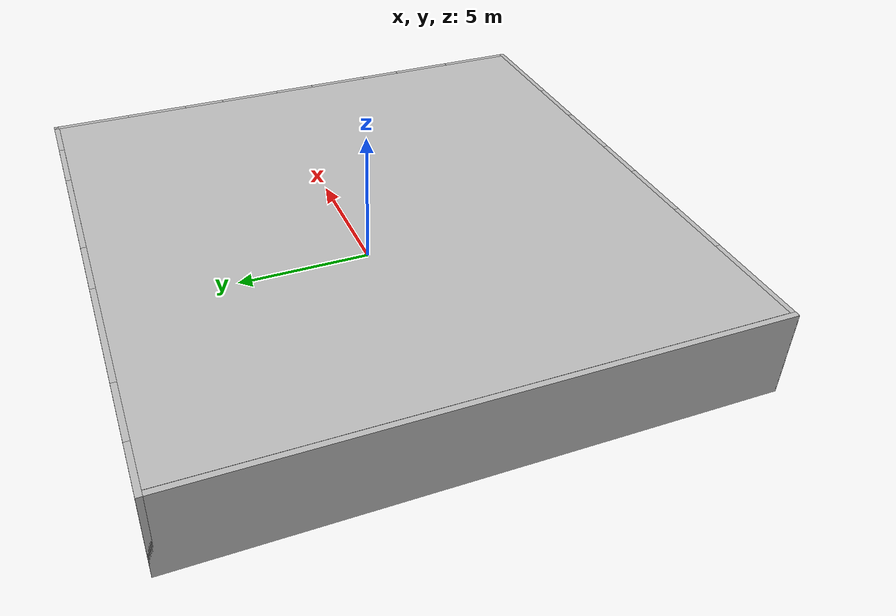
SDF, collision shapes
<sdf version="1.10">
 <model name="office_scene">
  <static>true</static>
  <link name="structure">
   <visual name="structure_visual">
    <geometry><mesh><uri>model://office_scene/meshes/structure.glb</uri></mesh></geometry>
   </visual>
   <collision name="structure_c0">
    <pose>9.33621 4.22544 0.57667 0.00000 -0.00000 -1.57080</pose>
    <geometry><box><size>0.5800 0.0450 0.5800</size></box></geometry>
   </collision>
   <collision name="structure_c1">
    <pose>9.33621 3.60544 0.57667 0.00000 -0.00000 -1.57080</pose>
    <geometry><box><size>0.5800 0.0450 0.5800</size></box></geometry>
   </collision>
   <collision name="structure_c2">
    <pose>9.33621 4.22544 1.19667 0.00000 -0.00000 -1.57080</pose>
    <geometry><box><size>0.5800 0.0450 0.5800</size></box></geometry>
   </collision>
   <collision name="structure_c3">
    <pose>9.33621 3.60544 1.19667 0.00000 -0.00000 -1.57080</pose>
    <geometry><box><size>0.5800 0.0450 0.5800</size></box></geometry>
   </collision>
   <collision name="structure_c4">
    <pose>-10.56379 -2.94456 0.60667 0.00000 -0.00000 1.57080</pose>
    <geometry><box><size>0.5800 0.0450 0.5800</size></box></geometry>
   </collision>
   <collision name="structure_c5">
    <pose>-10.56379 -2.32456 0.60667 0.00000 -0.00000 1.57080</pose>
    <geometry><box><size>0.5800 0.0450 0.5800</size></box></geometry>
   </collision>
   <collision name="structure_c6">
    <pose>-10.56379 -1.70456 0.60667 0.00000 -0.00000 1.57080</pose>
    <geometry><box><size>0.5800 0.0450 0.5800</size></box></geometry>
   </collision>
   <collision name="structure_c7">
    <pose>-10.56379 -1.08456 0.60667 0.00000 -0.00000 1.57080</pose>
    <geometry><box><size>0.5800 0.0450 0.5800</size></box></geometry>
   </collision>
   <collision name="structure_c8">
    <pose>-10.56379 -0.46456 0.60667 0.00000 -0.00000 1.57080</pose>
    <geometry><box><size>0.5800 0.0450 0.5800</size></box></geometry>
   </collision>
   <collision name="structure_c9">
    <pose>-10.56379 0.15544 0.60667 0.00000 -0.00000 1.57080</pose>
    <geometry><box><size>0.5800 0.0450 0.5800</size></box></geometry>
   </collision>
   <collision name="structure_c10">
    <pose>-10.56379 0.77544 0.60667 0.00000 -0.00000 1.57080</pose>
    <geometry><box><size>0.5800 0.0450 0.5800</size></box></geometry>
   </collision>
   <collision name="structure_c11">
    <pose>-10.56379 -2.94456 1.22667 0.00000 -0.00000 1.57080</pose>
    <geometry><box><size>0.5800 0.0450 0.5800</size></box></geometry>
   </collision>
   <collision name="structure_c12">
    <pose>-10.56379 -2.32456 1.22667 0.00000 -0.00000 1.57080</pose>
    <geometry><box><size>0.5800 0.0450 0.5800</size></box></geometry>
   </collision>
   <collision name="structure_c13">
    <pose>-10.56379 -1.70456 1.22667 0.00000 -0.00000 1.57080</pose>
    <geometry><box><size>0.5800 0.0450 0.5800</size></box></geometry>
   </collision>
   <collision name="structure_c14">
    <pose>-10.56379 -1.08456 1.22667 0.00000 -0.00000 1.57080</pose>
    <geometry><box><size>0.5800 0.0450 0.5800</size></box></geometry>
   </collision>
   <collision name="structure_c15">
    <pose>-10.56379 -0.46456 1.22667 0.00000 -0.00000 1.57080</pose>
    <geometry><box><size>0.5800 0.0450 0.5800</size></box></geometry>
   </collision>
   <collision name="structure_c16">
    <pose>-10.56379 0.15544 1.22667 0.00000 -0.00000 1.57080</pose>
    <geometry><box><size>0.5800 0.0450 0.5800</size></box></geometry>
   </collision>
   <collision name="structure_c17">
    <pose>-10.56379 0.77544 1.22667 0.00000 -0.00000 1.57080</pose>
    <geometry><box><size>0.5800 0.0450 0.5800</size></box></geometry>
   </collision>
   <collision name="structure_c18">
    <pose>-0.60379 -0.08456 2.45667 -3.14159 -0.00000 0.00000</pose>
    <geometry><box><size>20.0000 20.0000 0.0200</size></box></geometry>
   </collision>
   <collision name="structure_c19">
    <pose>2.59621 2.91544 0.31667 0.00000 -0.00000 0.00000</pose>
    <geometry><box><size>0.0700 0.2400 2.1200</size></box></geometry>
   </collision>
   <collision name="structure_c20">
    <pose>3.59621 2.91544 0.31667 0.00000 -0.00000 0.00000</pose>
    <geometry><box><size>0.0700 0.2400 2.1200</size></box></geometry>
   </collision>
   <collision name="structure_c21">
    <pose>3.09621 2.91544 1.37667 0.00000 -0.00000 0.00000</pose>
    <geometry><box><size>1.1400 0.2400 0.0700</size></box></geometry>
   </collision>
   <collision name="structure_c22">
    <pose>2.78072 2.43991 0.28667 0.00000 -0.00000 -1.25664</pose>
    <geometry><box><size>1.0000 0.0400 2.0500</size></box></geometry>
   </collision>
   <collision name="structure_c23">
    <pose>-6.50379 4.51544 0.31667 0.00000 -0.00000 0.00000</pose>
    <geometry><box><size>0.0700 0.2400 2.1200</size></box></geometry>
   </collision>
   <collision name="structure_c24">
    <pose>-5.50379 4.51544 0.31667 0.00000 -0.00000 0.00000</pose>
    <geometry><box><size>0.0700 0.2400 2.1200</size></box></geometry>
   </collision>
   <collision name="structure_c25">
    <pose>-6.00379 4.51544 1.37667 0.00000 -0.00000 0.00000</pose>
    <geometry><box><size>1.1400 0.2400 0.0700</size></box></geometry>
   </collision>
   <collision name="structure_c26">
    <pose>-6.26248 4.06228 0.28667 0.00000 -0.00000 -1.13446</pose>
    <geometry><box><size>1.0000 0.0400 2.0500</size></box></geometry>
   </collision>
   <collision name="structure_c27">
    <pose>-1.10379 -10.18456 0.30667 0.00000 -0.00000 0.00000</pose>
    <geometry><box><size>0.9400 0.0500 2.1000</size></box></geometry>
   </collision>
   <collision name="structure_c28">
    <pose>-0.10379 -10.18456 0.30667 0.00000 -0.00000 0.00000</pose>
    <geometry><box><size>0.9400 0.0500 2.1000</size></box></geometry>
   </collision>
   <collision name="structure_c29">
    <pose>-0.60379 -10.18456 1.41667 0.00000 -0.00000 0.00000</pose>
    <geometry><box><size>2.0000 0.2000 0.0800</size></box></geometry>
   </collision>
   <collision name="structure_c30">
    <pose>-1.46379 -10.24456 0.30667 0.00000 -0.00000 0.00000</pose>
    <geometry><box><size>0.0360 0.0360 0.9000</size></box></geometry>
   </collision>
   <collision name="structure_c31">
    <pose>0.25621 -10.24456 0.30667 0.00000 -0.00000 0.00000</pose>
    <geometry><box><size>0.0360 0.0360 0.9000</size></box></geometry>
   </collision>
   <collision name="structure_c32">
    <pose>-1.56379 -10.18456 0.30667 0.00000 -0.00000 0.00000</pose>
    <geometry><box><size>0.0500 0.0600 2.1000</size></box></geometry>
   </collision>
   <collision name="structure_c33">
    <pose>0.35621 -10.18456 0.30667 0.00000 -0.00000 0.00000</pose>
    <geometry><box><size>0.0500 0.0600 2.1000</size></box></geometry>
   </collision>
   <collision name="structure_c34">
    <pose>-0.60379 -0.08456 -0.74333 0.00000 -0.00000 0.00000</pose>
    <geometry><box><size>20.0000 20.0000 0.0200</size></box></geometry>
   </collision>
   <collision name="structure_c35">
    <pose>2.39621 4.31544 1.05667 0.00000 -0.00000 0.00000</pose>
    <geometry><box><size>0.0500 0.0500 1.6000</size></box></geometry>
   </collision>
   <collision name="structure_c36">
    <pose>2.39621 5.71544 1.05667 0.00000 -0.00000 0.00000</pose>
    <geometry><box><size>0.0500 0.0500 1.6000</size></box></geometry>
   </collision>
   <collision name="structure_c37">
    <pose>2.39621 7.11544 1.05667 0.00000 -0.00000 0.00000</pose>
    <geometry><box><size>0.0500 0.0500 1.6000</size></box></geometry>
   </collision>
   <collision name="structure_c38">
    <pose>2.39621 8.51544 1.05667 0.00000 -0.00000 0.00000</pose>
    <geometry><box><size>0.0500 0.0500 1.6000</size></box></geometry>
   </collision>
   <collision name="structure_c39">
    <pose>2.39621 6.41544 0.27667 0.00000 -0.00000 0.00000</pose>
    <geometry><box><size>0.0700 7.0000 0.0500</size></box></geometry>
   </collision>
   <collision name="structure_c40">
    <pose>2.39621 6.41544 1.83667 0.00000 -0.00000 0.00000</pose>
    <geometry><box><size>0.0700 7.0000 0.0500</size></box></geometry>
   </collision>
   <collision name="structure_c41">
    <pose>3.09621 2.91544 1.90667 0.00000 -0.00000 0.00000</pose>
    <geometry><box><size>1.0000 0.2000 1.1000</size></box></geometry>
   </collision>
   <collision name="structure_c42">
    <pose>2.49621 2.91544 0.85667 0.00000 -0.00000 0.00000</pose>
    <geometry><box><size>0.2000 0.2000 3.2000</size></box></geometry>
   </collision>
   <collision name="structure_c43">
    <pose>6.49621 2.91544 0.85667 0.00000 -0.00000 0.00000</pose>
    <geometry><box><size>5.8000 0.2000 3.2000</size></box></geometry>
   </collision>
   <collision name="structure_c44">
    <pose>2.39621 6.41544 -0.24333 0.00000 -0.00000 0.00000</pose>
    <geometry><box><size>0.2000 7.0000 1.0000</size></box></geometry>
   </collision>
   <collision name="structure_c45">
    <pose>2.39621 6.41544 1.05667 0.00000 -0.00000 0.00000</pose>
    <geometry><box><size>0.0200 7.0000 1.6000</size></box></geometry>
   </collision>
   <collision name="structure_c46">
    <pose>2.39621 6.41544 2.15667 0.00000 -0.00000 0.00000</pose>
    <geometry><box><size>0.2000 7.0000 0.6000</size></box></geometry>
   </collision>
   <collision name="structure_c47">
    <pose>-5.00379 7.21544 0.85667 0.00000 -0.00000 0.00000</pose>
    <geometry><box><size>0.2000 5.4000 3.2000</size></box></geometry>
   </collision>
   <collision name="structure_c48">
    <pose>-6.00379 4.51544 1.90667 0.00000 -0.00000 0.00000</pose>
    <geometry><box><size>1.0000 0.2000 1.1000</size></box></geometry>
   </collision>
   <collision name="structure_c49">
    <pose>-8.55379 4.51544 0.85667 0.00000 -0.00000 0.00000</pose>
    <geometry><box><size>4.1000 0.2000 3.2000</size></box></geometry>
   </collision>
   <collision name="structure_c50">
    <pose>-5.25379 4.51544 0.85667 0.00000 -0.00000 0.00000</pose>
    <geometry><box><size>0.5000 0.2000 3.2000</size></box></geometry>
   </collision>
   <collision name="structure_c51">
    <pose>9.38621 -0.08456 -0.69833 0.00000 -0.00000 0.00000</pose>
    <geometry><box><size>0.0200 20.0000 0.0900</size></box></geometry>
   </collision>
   <collision name="structure_c52">
    <pose>-0.60379 9.90544 -0.69833 0.00000 -0.00000 0.00000</pose>
    <geometry><box><size>20.0000 0.0200 0.0900</size></box></geometry>
   </collision>
   <collision name="structure_c53">
    <pose>-0.60379 -10.07456 -0.69833 0.00000 -0.00000 0.00000</pose>
    <geometry><box><size>20.0000 0.0200 0.0900</size></box></geometry>
   </collision>
   <collision name="structure_c54">
    <pose>-10.59379 -0.08456 -0.69833 0.00000 -0.00000 0.00000</pose>
    <geometry><box><size>0.0200 20.0000 0.0900</size></box></geometry>
   </collision>
   <collision name="structure_c55">
    <pose>9.49621 -6.08456 -0.29333 0.00000 -0.00000 0.00000</pose>
    <geometry><box><size>0.2000 2.4000 0.9000</size></box></geometry>
   </collision>
   <collision name="structure_c56">
    <pose>9.49621 -6.08456 2.05667 0.00000 -0.00000 0.00000</pose>
    <geometry><box><size>0.2000 2.4000 0.8000</size></box></geometry>
   </collision>
   <collision name="structure_c57">
    <pose>9.49621 -2.08456 -0.29333 0.00000 -0.00000 0.00000</pose>
    <geometry><box><size>0.2000 2.4000 0.9000</size></box></geometry>
   </collision>
   <collision name="structure_c58">
    <pose>9.49621 -2.08456 2.05667 0.00000 -0.00000 0.00000</pose>
    <geometry><box><size>0.2000 2.4000 0.8000</size></box></geometry>
   </collision>
   <collision name="structure_c59">
    <pose>9.49621 1.91544 -0.29333 0.00000 -0.00000 0.00000</pose>
    <geometry><box><size>0.2000 2.4000 0.9000</size></box></geometry>
   </collision>
   <collision name="structure_c60">
    <pose>9.49621 1.91544 2.05667 0.00000 -0.00000 0.00000</pose>
    <geometry><box><size>0.2000 2.4000 0.8000</size></box></geometry>
   </collision>
   <collision name="structure_c61">
    <pose>9.49621 5.91544 -0.29333 0.00000 -0.00000 0.00000</pose>
    <geometry><box><size>0.2000 2.4000 0.9000</size></box></geometry>
   </collision>
   <collision name="structure_c62">
    <pose>9.49621 5.91544 2.05667 0.00000 -0.00000 0.00000</pose>
    <geometry><box><size>0.2000 2.4000 0.8000</size></box></geometry>
   </collision>
   <collision name="structure_c63">
    <pose>9.49621 -8.78456 0.85667 0.00000 -0.00000 0.00000</pose>
    <geometry><box><size>0.2000 3.0000 3.2000</size></box></geometry>
   </collision>
   <collision name="structure_c64">
    <pose>9.49621 -4.08456 0.85667 0.00000 -0.00000 0.00000</pose>
    <geometry><box><size>0.2000 1.6000 3.2000</size></box></geometry>
   </collision>
   <collision name="structure_c65">
    <pose>9.49621 -0.08456 0.85667 0.00000 -0.00000 0.00000</pose>
    <geometry><box><size>0.2000 1.6000 3.2000</size></box></geometry>
   </collision>
   <collision name="structure_c66">
    <pose>9.49621 3.91544 0.85667 0.00000 -0.00000 0.00000</pose>
    <geometry><box><size>0.2000 1.6000 3.2000</size></box></geometry>
   </collision>
   <collision name="structure_c67">
    <pose>9.49621 8.61544 0.85667 0.00000 -0.00000 0.00000</pose>
    <geometry><box><size>0.2000 3.0000 3.2000</size></box></geometry>
   </collision>
   <collision name="structure_c68">
    <pose>-7.60379 10.01544 -0.29333 0.00000 -0.00000 0.00000</pose>
    <geometry><box><size>2.4000 0.2000 0.9000</size></box></geometry>
   </collision>
   <collision name="structure_c69">
    <pose>-7.60379 10.01544 2.05667 0.00000 -0.00000 0.00000</pose>
    <geometry><box><size>2.4000 0.2000 0.8000</size></box></geometry>
   </collision>
   <collision name="structure_c70">
    <pose>-0.60379 10.01544 -0.29333 0.00000 -0.00000 0.00000</pose>
    <geometry><box><size>2.4000 0.2000 0.9000</size></box></geometry>
   </collision>
   <collision name="structure_c71">
    <pose>-0.60379 10.01544 2.05667 0.00000 -0.00000 0.00000</pose>
    <geometry><box><size>2.4000 0.2000 0.8000</size></box></geometry>
   </collision>
   <collision name="structure_c72">
    <pose>6.39621 10.01544 -0.29333 0.00000 -0.00000 0.00000</pose>
    <geometry><box><size>2.4000 0.2000 0.9000</size></box></geometry>
   </collision>
   <collision name="structure_c73">
    <pose>6.39621 10.01544 2.05667 0.00000 -0.00000 0.00000</pose>
    <geometry><box><size>2.4000 0.2000 0.8000</size></box></geometry>
   </collision>
   <collision name="structure_c74">
    <pose>-9.80379 10.01544 0.85667 0.00000 -0.00000 0.00000</pose>
    <geometry><box><size>2.0000 0.2000 3.2000</size></box></geometry>
   </collision>
   <collision name="structure_c75">
    <pose>-4.10379 10.01544 0.85667 0.00000 -0.00000 0.00000</pose>
    <geometry><box><size>4.6000 0.2000 3.2000</size></box></geometry>
   </collision>
   <collision name="structure_c76">
    <pose>2.89621 10.01544 0.85667 0.00000 -0.00000 0.00000</pose>
    <geometry><box><size>4.6000 0.2000 3.2000</size></box></geometry>
   </collision>
   <collision name="structure_c77">
    <pose>8.59621 10.01544 0.85667 0.00000 -0.00000 0.00000</pose>
    <geometry><box><size>2.0000 0.2000 3.2000</size></box></geometry>
   </collision>
   <collision name="structure_c78">
    <pose>-5.60379 -10.18456 -0.29333 0.00000 -0.00000 0.00000</pose>
    <geometry><box><size>2.4000 0.2000 0.9000</size></box></geometry>
   </collision>
   <collision name="structure_c79">
    <pose>-5.60379 -10.18456 2.05667 0.00000 -0.00000 0.00000</pose>
    <geometry><box><size>2.4000 0.2000 0.8000</size></box></geometry>
   </collision>
   <collision name="structure_c80">
    <pose>-0.60379 -10.18456 1.95667 0.00000 -0.00000 0.00000</pose>
    <geometry><box><size>2.0000 0.2000 1.0000</size></box></geometry>
   </collision>
   <collision name="structure_c81">
    <pose>4.39621 -10.18456 -0.29333 0.00000 -0.00000 0.00000</pose>
    <geometry><box><size>2.4000 0.2000 0.9000</size></box></geometry>
   </collision>
   <collision name="structure_c82">
    <pose>4.39621 -10.18456 2.05667 0.00000 -0.00000 0.00000</pose>
    <geometry><box><size>2.4000 0.2000 0.8000</size></box></geometry>
   </collision>
   <collision name="structure_c83">
    <pose>-8.80379 -10.18456 0.85667 0.00000 -0.00000 0.00000</pose>
    <geometry><box><size>4.0000 0.2000 3.2000</size></box></geometry>
   </collision>
   <collision name="structure_c84">
    <pose>-3.00379 -10.18456 0.85667 0.00000 -0.00000 0.00000</pose>
    <geometry><box><size>2.8000 0.2000 3.2000</size></box></geometry>
   </collision>
   <collision name="structure_c85">
    <pose>1.79621 -10.18456 0.85667 0.00000 -0.00000 0.00000</pose>
    <geometry><box><size>2.8000 0.2000 3.2000</size></box></geometry>
   </collision>
   <collision name="structure_c86">
    <pose>7.59621 -10.18456 0.85667 0.00000 -0.00000 0.00000</pose>
    <geometry><box><size>4.0000 0.2000 3.2000</size></box></geometry>
   </collision>
   <collision name="structure_c87">
    <pose>-10.70379 -0.08456 0.85667 0.00000 -0.00000 0.00000</pose>
    <geometry><box><size>0.2000 20.4000 3.2000</size></box></geometry>
   </collision>
   <collision name="structure_c88">
    <pose>9.49621 -6.08456 0.18667 0.00000 -0.00000 0.00000</pose>
    <geometry><box><size>0.2000 2.4000 0.0600</size></box></geometry>
   </collision>
   <collision name="structure_c89">
    <pose>9.49621 -7.25456 0.90667 0.00000 -0.00000 0.00000</pose>
    <geometry><box><size>0.2000 0.0600 1.5000</size></box></geometry>
   </collision>
   <collision name="structure_c90">
    <pose>9.49621 -4.91456 0.90667 0.00000 -0.00000 0.00000</pose>
    <geometry><box><size>0.2000 0.0600 1.5000</size></box></geometry>
   </collision>
   <collision name="structure_c91">
    <pose>9.49621 -6.08456 1.62667 0.00000 -0.00000 0.00000</pose>
    <geometry><box><size>0.2000 2.4000 0.0600</size></box></geometry>
   </collision>
   <collision name="structure_c92">
    <pose>9.49621 -6.08456 0.90667 0.00000 -0.00000 0.00000</pose>
    <geometry><box><size>0.0200 2.2800 1.3800</size></box></geometry>
   </collision>
   <collision name="structure_c93">
    <pose>9.49621 -6.08456 0.90667 0.00000 -0.00000 0.00000</pose>
    <geometry><box><size>0.1800 0.0400 1.5000</size></box></geometry>
   </collision>
   <collision name="structure_c94">
    <pose>9.49621 -2.08456 0.18667 0.00000 -0.00000 0.00000</pose>
    <geometry><box><size>0.2000 2.4000 0.0600</size></box></geometry>
   </collision>
   <collision name="structure_c95">
    <pose>9.49621 -3.25456 0.90667 0.00000 -0.00000 0.00000</pose>
    <geometry><box><size>0.2000 0.0600 1.5000</size></box></geometry>
   </collision>
   <collision name="structure_c96">
    <pose>9.49621 -0.91456 0.90667 0.00000 -0.00000 0.00000</pose>
    <geometry><box><size>0.2000 0.0600 1.5000</size></box></geometry>
   </collision>
   <collision name="structure_c97">
    <pose>9.49621 -2.08456 1.62667 0.00000 -0.00000 0.00000</pose>
    <geometry><box><size>0.2000 2.4000 0.0600</size></box></geometry>
   </collision>
   <collision name="structure_c98">
    <pose>9.49621 -2.08456 0.90667 0.00000 -0.00000 0.00000</pose>
    <geometry><box><size>0.0200 2.2800 1.3800</size></box></geometry>
   </collision>
   <collision name="structure_c99">
    <pose>9.49621 -2.08456 0.90667 0.00000 -0.00000 0.00000</pose>
    <geometry><box><size>0.1800 0.0400 1.5000</size></box></geometry>
   </collision>
   <collision name="structure_c100">
    <pose>9.49621 1.91544 0.18667 0.00000 -0.00000 0.00000</pose>
    <geometry><box><size>0.2000 2.4000 0.0600</size></box></geometry>
   </collision>
   <collision name="structure_c101">
    <pose>9.49621 0.74544 0.90667 0.00000 -0.00000 0.00000</pose>
    <geometry><box><size>0.2000 0.0600 1.5000</size></box></geometry>
   </collision>
   <collision name="structure_c102">
    <pose>9.49621 3.08544 0.90667 0.00000 -0.00000 0.00000</pose>
    <geometry><box><size>0.2000 0.0600 1.5000</size></box></geometry>
   </collision>
   <collision name="structure_c103">
    <pose>9.49621 1.91544 1.62667 0.00000 -0.00000 0.00000</pose>
    <geometry><box><size>0.2000 2.4000 0.0600</size></box></geometry>
   </collision>
   <collision name="structure_c104">
    <pose>9.49621 1.91544 0.90667 0.00000 -0.00000 0.00000</pose>
    <geometry><box><size>0.0200 2.2800 1.3800</size></box></geometry>
   </collision>
   <collision name="structure_c105">
    <pose>9.49621 1.91544 0.90667 0.00000 -0.00000 0.00000</pose>
    <geometry><box><size>0.1800 0.0400 1.5000</size></box></geometry>
   </collision>
   <collision name="structure_c106">
    <pose>9.49621 5.91544 0.18667 0.00000 -0.00000 0.00000</pose>
    <geometry><box><size>0.2000 2.4000 0.0600</size></box></geometry>
   </collision>
   <collision name="structure_c107">
    <pose>9.49621 4.74544 0.90667 0.00000 -0.00000 0.00000</pose>
    <geometry><box><size>0.2000 0.0600 1.5000</size></box></geometry>
   </collision>
   <collision name="structure_c108">
    <pose>9.49621 7.08544 0.90667 0.00000 -0.00000 0.00000</pose>
    <geometry><box><size>0.2000 0.0600 1.5000</size></box></geometry>
   </collision>
   <collision name="structure_c109">
    <pose>9.49621 5.91544 1.62667 0.00000 -0.00000 0.00000</pose>
    <geometry><box><size>0.2000 2.4000 0.0600</size></box></geometry>
   </collision>
   <collision name="structure_c110">
    <pose>9.49621 5.91544 0.90667 0.00000 -0.00000 0.00000</pose>
    <geometry><box><size>0.0200 2.2800 1.3800</size></box></geometry>
   </collision>
   <collision name="structure_c111">
    <pose>9.49621 5.91544 0.90667 0.00000 -0.00000 0.00000</pose>
    <geometry><box><size>0.1800 0.0400 1.5000</size></box></geometry>
   </collision>
   <collision name="structure_c112">
    <pose>-7.60379 10.01544 0.18667 0.00000 -0.00000 0.00000</pose>
    <geometry><box><size>2.4000 0.2000 0.0600</size></box></geometry>
   </collision>
   <collision name="structure_c113">
    <pose>-8.77379 10.01544 0.90667 0.00000 -0.00000 0.00000</pose>
    <geometry><box><size>0.0600 0.2000 1.5000</size></box></geometry>
   </collision>
   <collision name="structure_c114">
    <pose>-6.43379 10.01544 0.90667 0.00000 -0.00000 0.00000</pose>
    <geometry><box><size>0.0600 0.2000 1.5000</size></box></geometry>
   </collision>
   <collision name="structure_c115">
    <pose>-7.60379 10.01544 1.62667 0.00000 -0.00000 0.00000</pose>
    <geometry><box><size>2.4000 0.2000 0.0600</size></box></geometry>
   </collision>
   <collision name="structure_c116">
    <pose>-7.60379 10.01544 0.90667 0.00000 -0.00000 0.00000</pose>
    <geometry><box><size>2.2800 0.0200 1.3800</size></box></geometry>
   </collision>
   <collision name="structure_c117">
    <pose>-7.60379 10.01544 0.90667 0.00000 -0.00000 0.00000</pose>
    <geometry><box><size>0.0400 0.1800 1.5000</size></box></geometry>
   </collision>
   <collision name="structure_c118">
    <pose>-0.60379 10.01544 0.18667 0.00000 -0.00000 0.00000</pose>
    <geometry><box><size>2.4000 0.2000 0.0600</size></box></geometry>
   </collision>
   <collision name="structure_c119">
    <pose>-1.77379 10.01544 0.90667 0.00000 -0.00000 0.00000</pose>
    <geometry><box><size>0.0600 0.2000 1.5000</size></box></geometry>
   </collision>
   <collision name="structure_c120">
    <pose>0.56621 10.01544 0.90667 0.00000 -0.00000 0.00000</pose>
    <geometry><box><size>0.0600 0.2000 1.5000</size></box></geometry>
   </collision>
   <collision name="structure_c121">
    <pose>-0.60379 10.01544 1.62667 0.00000 -0.00000 0.00000</pose>
    <geometry><box><size>2.4000 0.2000 0.0600</size></box></geometry>
   </collision>
   <collision name="structure_c122">
    <pose>-0.60379 10.01544 0.90667 0.00000 -0.00000 0.00000</pose>
    <geometry><box><size>2.2800 0.0200 1.3800</size></box></geometry>
   </collision>
   <collision name="structure_c123">
    <pose>-0.60379 10.01544 0.90667 0.00000 -0.00000 0.00000</pose>
    <geometry><box><size>0.0400 0.1800 1.5000</size></box></geometry>
   </collision>
   <collision name="structure_c124">
    <pose>6.39621 10.01544 0.18667 0.00000 -0.00000 0.00000</pose>
    <geometry><box><size>2.4000 0.2000 0.0600</size></box></geometry>
   </collision>
   <collision name="structure_c125">
    <pose>5.22621 10.01544 0.90667 0.00000 -0.00000 0.00000</pose>
    <geometry><box><size>0.0600 0.2000 1.5000</size></box></geometry>
   </collision>
   <collision name="structure_c126">
    <pose>7.56621 10.01544 0.90667 0.00000 -0.00000 0.00000</pose>
    <geometry><box><size>0.0600 0.2000 1.5000</size></box></geometry>
   </collision>
   <collision name="structure_c127">
    <pose>6.39621 10.01544 1.62667 0.00000 -0.00000 0.00000</pose>
    <geometry><box><size>2.4000 0.2000 0.0600</size></box></geometry>
   </collision>
   <collision name="structure_c128">
    <pose>6.39621 10.01544 0.90667 0.00000 -0.00000 0.00000</pose>
    <geometry><box><size>2.2800 0.0200 1.3800</size></box></geometry>
   </collision>
   <collision name="structure_c129">
    <pose>6.39621 10.01544 0.90667 0.00000 -0.00000 0.00000</pose>
    <geometry><box><size>0.0400 0.1800 1.5000</size></box></geometry>
   </collision>
   <collision name="structure_c130">
    <pose>-5.60379 -10.18456 0.18667 0.00000 -0.00000 0.00000</pose>
    <geometry><box><size>2.4000 0.2000 0.0600</size></box></geometry>
   </collision>
   <collision name="structure_c131">
    <pose>-6.77379 -10.18456 0.90667 0.00000 -0.00000 0.00000</pose>
    <geometry><box><size>0.0600 0.2000 1.5000</size></box></geometry>
   </collision>
   <collision name="structure_c132">
    <pose>-4.43379 -10.18456 0.90667 0.00000 -0.00000 0.00000</pose>
    <geometry><box><size>0.0600 0.2000 1.5000</size></box></geometry>
   </collision>
   <collision name="structure_c133">
    <pose>-5.60379 -10.18456 1.62667 0.00000 -0.00000 0.00000</pose>
    <geometry><box><size>2.4000 0.2000 0.0600</size></box></geometry>
   </collision>
   <collision name="structure_c134">
    <pose>-5.60379 -10.18456 0.90667 0.00000 -0.00000 0.00000</pose>
    <geometry><box><size>2.2800 0.0200 1.3800</size></box></geometry>
   </collision>
   <collision name="structure_c135">
    <pose>-5.60379 -10.18456 0.90667 0.00000 -0.00000 0.00000</pose>
    <geometry><box><size>0.0400 0.1800 1.5000</size></box></geometry>
   </collision>
   <collision name="structure_c136">
    <pose>4.39621 -10.18456 0.18667 0.00000 -0.00000 0.00000</pose>
    <geometry><box><size>2.4000 0.2000 0.0600</size></box></geometry>
   </collision>
   <collision name="structure_c137">
    <pose>3.22621 -10.18456 0.90667 0.00000 -0.00000 0.00000</pose>
    <geometry><box><size>0.0600 0.2000 1.5000</size></box></geometry>
   </collision>
   <collision name="structure_c138">
    <pose>5.56621 -10.18456 0.90667 0.00000 -0.00000 0.00000</pose>
    <geometry><box><size>0.0600 0.2000 1.5000</size></box></geometry>
   </collision>
   <collision name="structure_c139">
    <pose>4.39621 -10.18456 1.62667 0.00000 -0.00000 0.00000</pose>
    <geometry><box><size>2.4000 0.2000 0.0600</size></box></geometry>
   </collision>
   <collision name="structure_c140">
    <pose>4.39621 -10.18456 0.90667 0.00000 -0.00000 0.00000</pose>
    <geometry><box><size>2.2800 0.0200 1.3800</size></box></geometry>
   </collision>
   <collision name="structure_c141">
    <pose>4.39621 -10.18456 0.90667 0.00000 -0.00000 0.00000</pose>
    <geometry><box><size>0.0400 0.1800 1.5000</size></box></geometry>
   </collision>
  </link>
 </model>
</sdf>
